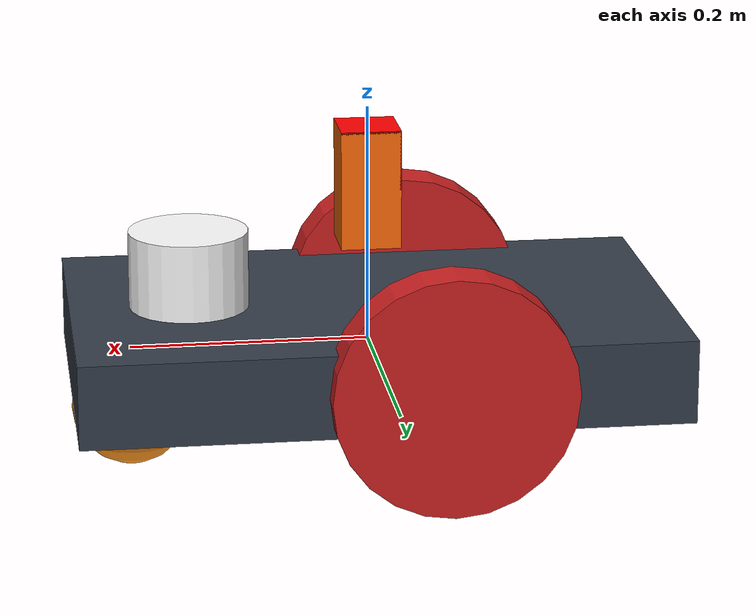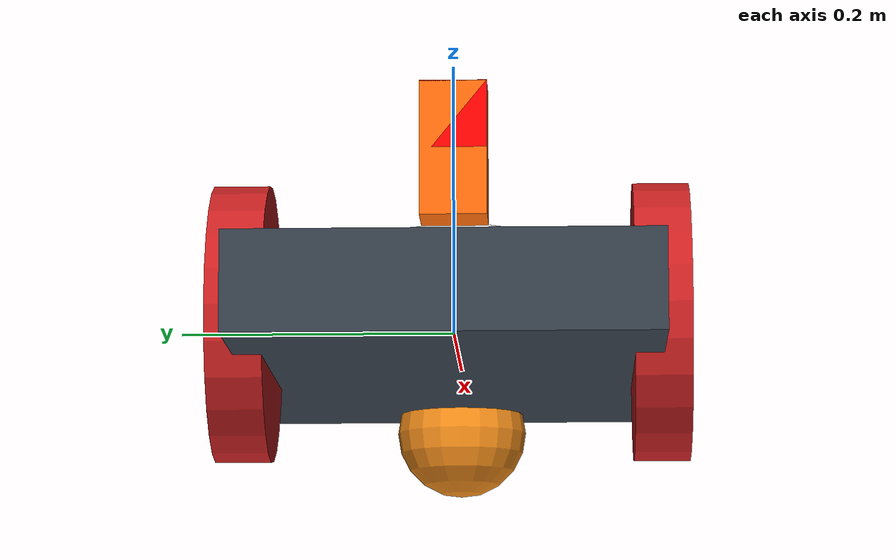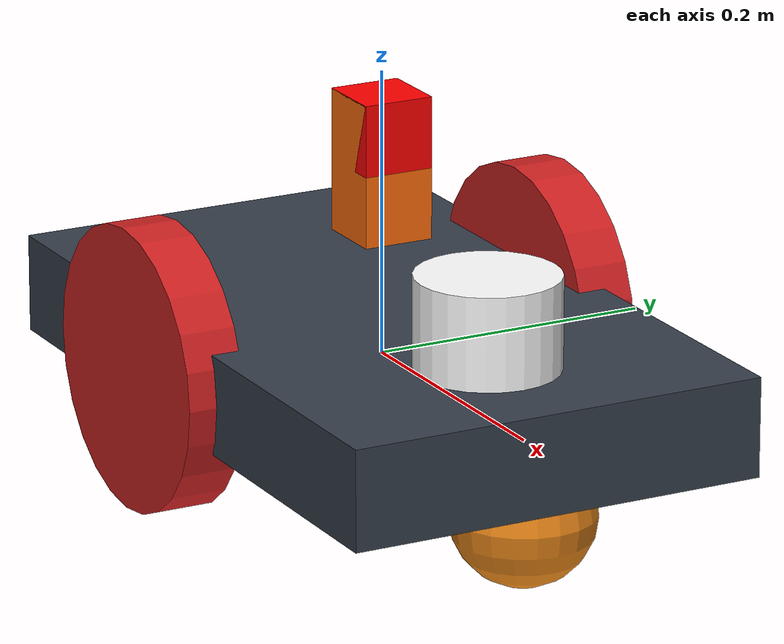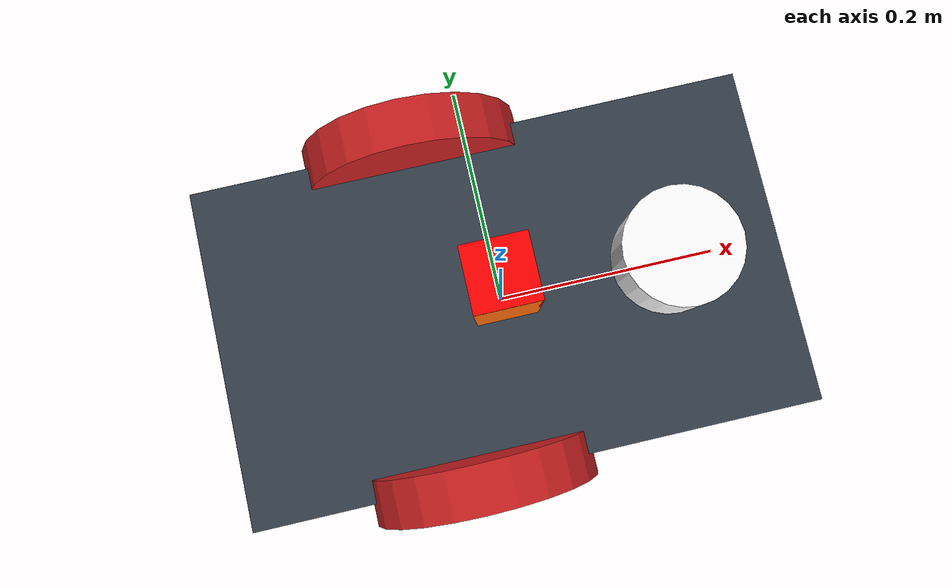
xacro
<?xml version="1.0"?>
<robot xmlns:xacro="http://www.ros.org/wiki/xacro" name="robot_assignment_xacro">
<xacro:include filename="$(find robot_exploration)/urdf/robot_assignment.gazebo"/>

	<xacro:property name="length_wheel" value="0.04" />
	<xacro:property name="radius_wheel" value="0.1" />

	<xacro:macro name="default_inertial" params="mass">
               <inertial>
                       <mass value="${mass}" />
                       <origin rpy="0 1.5707 1.5707" xyz="0 0 0"/>
                       <inertia ixx="0.000526666666667" ixy="0" ixz="0" iyy="0.000526666666667" iyz="0" izz="0.001"/>
               </inertial>
	</xacro:macro>

    <xacro:macro name="wheel_geometry">
		<geometry>
       			<cylinder length="${length_wheel}" radius="${radius_wheel}"/>
     	</geometry>
	</xacro:macro>

  <xacro:macro name="cylinder_inertia" params="mass r l">
    <inertia ixx="${mass*(3*r*r+l*l)/12}" ixy = "0" ixz = "0"
                iyy="${mass*(3*r*r+l*l)/12}" iyz = "0" izz="${mass*(r*r)/2}" />
 </xacro:macro>

  <material name="black">
    <color rgba="0.0 0.0 0.0 1.0"/>
  </material>
  <material name="blue">
    <color rgba="0.203125 0.23828125 0.28515625 1.0"/>
  </material>
  <material name="green">
    <color rgba="0.0 0.8 0.0 1.0"/>
  </material>
  <material name="grey">
    <color rgba="0.2 0.2 0.2 1.0"/>
  </material>
  <material name="orange">
    <color rgba="1.0 0.423529411765 0.0392156862745 1.0"/>
  </material>
  <material name="brown">
    <color rgba="0.870588235294 0.811764705882 0.764705882353 1.0"/>
  </material>
  <material name="red">
    <color rgba="0.80078125 0.12890625 0.1328125 1.0"/>
  </material>
  <material name="white">
    <color rgba="1.0 1.0 1.0 1.0"/>
  </material>

	  <link name="link_chassis">
    <!-- pose and inertial -->
    <pose>0 0 0.1 0 0 0</pose>
    <inertial>
      <mass value="5"/>
      <origin rpy="0 0 0" xyz="0 0 0.1"/>
      <inertia ixx="0.0395416666667" ixy="0" ixz="0" iyy="0.106208333333" iyz="0" izz="0.106208333333"/>
    </inertial>
    <!-- body -->
    <collision name="collision_chassis">
      <geometry>
        <box size="0.5 0.3 0.07"/>
      </geometry>
    </collision>
    <visual>
      <origin rpy="0 0 0" xyz="0 0 0"/>
      <geometry>
        <box size="0.5 0.3 0.07"/>
      </geometry>
      <material name="blue"/>
    </visual>
    <!-- caster front -->
    <collision name="caster_front_collision">
      <origin rpy=" 0 0 0" xyz="0.35 0 -0.05"/>
      <geometry>
        <sphere radius="0.05"/>
      </geometry>
    </collision>
    <visual name="caster_front_visual">
      <origin rpy=" 0 0 0" xyz="0.2 0 -0.05"/>
      <geometry>
        <sphere radius="0.05"/>
      </geometry>
    </visual>
  </link>

   <link name="link_right_wheel">
    <xacro:default_inertial mass="0.2"/>
    <collision name="link_right_wheel_collision">
      <origin rpy="0 1.5707 1.5707" xyz="0 0 0"/>
      <xacro:wheel_geometry />
    </collision>
    <visual name="link_right_wheel_visual">
      <origin rpy="0 1.5707 1.5707" xyz="0 0 0"/>
      <xacro:wheel_geometry />
      <material name="red"/>
    </visual>
  </link>

   <link name="link_left_wheel">
    <xacro:default_inertial mass="0.2"/>
    <collision name="link_left_wheel_collision">
      <origin rpy="0 1.5707 1.5707" xyz="0 0 0"/>
      <xacro:wheel_geometry />
    </collision>
    <visual name="link_left_wheel_visual">
      <origin rpy="0 1.5707 1.5707" xyz="0 0 0"/>
      <xacro:wheel_geometry />
      <material name="red"/>
    </visual>
  </link>

  <joint name="joint_right_wheel" type="continuous">
    <origin rpy="0 0 0" xyz="-0.05 0.15 0"/>
    <child link="link_right_wheel"/>
    <parent link="link_chassis"/>
    <axis rpy="0 0 0" xyz="0 1 0"/>
    <limit effort="10000" velocity="1000"/>
    <joint_properties damping="1.0" friction="1.0"/>
  </joint>

  <joint name="joint_left_wheel" type="continuous">
    <origin rpy="0 0 0" xyz="-0.05 -0.15 0"/>
    <child link="link_left_wheel"/>
    <parent link="link_chassis"/>
    <axis rpy="0 0 0" xyz="0 1 0"/>
    <limit effort="10000" velocity="1000"/>
    <joint_properties damping="1.0" friction="1.0"/>
  </joint>

  <link name="camera_link">
	    <collision>
	      <origin xyz="0 0 0.025" rpy="0 0 0"/>
	      <geometry>
		<box size="0.05 0.05 0.05"/>
	      </geometry>
	    </collision>
	    <visual>
	      <origin xyz="0 0 0.025" rpy="0 0 0"/>
	      <geometry>
		<box size="0.05 0.05 0.05"/>
	      </geometry>
	      <material name="red">
		      <color rgba="1 0 0 1"/>
	      </material>
	    </visual>
	    <inertial>
	      <mass value="1e-5" />
	      <origin xyz="0 0 0" rpy="0 0 0"/>
	      <inertia ixx="1e-6" ixy="0" ixz="0" iyy="1e-6" iyz="0" izz="1e-6" />
	    </inertial>
  </link>
  <link name = "camera_stick">
    <collision>
      <origin xyz = "0 0 0.1" rpy="0 0 0"/>
      <geometry>
        <box size = "0.05 0.05 0.1"/>
      </geometry>
    </collision>
    <visual>
      <origin xyz = "0 0 0.1" rpy="0 0 0"/>
      <geometry>
        <box size = "0.05 0.05 0.1"/>
      </geometry>
      <material name="orange"/>
    </visual>
    <inertial>
      <mass value="0.05"/>
      <origin xyz="0 0 0" rpy="0 0 0"/>
      <inertia ixx="1e-3" ixy="0" ixz="0" iyy="1e-3" iyz="0" izz="1e-3"/>
    </inertial>
  </link>

  <joint name="camera_base_joint" type = "fixed">
    <axis xyz="0 0 1"/>
    <origin xyz = "0 0 0.035" rpy="0 0 0"/>
    <parent link="link_chassis"/>
    <child link = "camera_stick"/>
  </joint>

  <joint name="camera_joint" type="fixed">
    <axis xyz="0 0 1" />
    <origin xyz="0 0 0.1" rpy="0 0 0"/>
    <parent link="camera_stick"/>
    <child link="camera_link"/>
  </joint>

  <link name="laser">
    <inertial>
      <origin xyz="0 0 0" rpy="0 0 0" />
      <mass value="1" />
      <xacro:cylinder_inertia mass="1" r="0.05" l="0.1" />
    </inertial>

    <visual>
      <origin xyz="0 0 0" rpy="0 0 0" />
      <geometry>
        <cylinder radius="0.05" length="0.1"/>
      </geometry>
      <material name="white" />
    </visual>

    <collision>
      <origin xyz="0 0 0" rpy="0 0 0"/>
      <geometry>
        <cylinder radius="0.05" length="0.1"/>
      </geometry>
    </collision>
  </link>

  <joint name="joint_laser" type="fixed">
    <origin xyz="0.15 0 0.05" rpy="0 0 0"/>
    <parent link="link_chassis"/>
    <child link="laser"/>
  </joint>

</robot>
